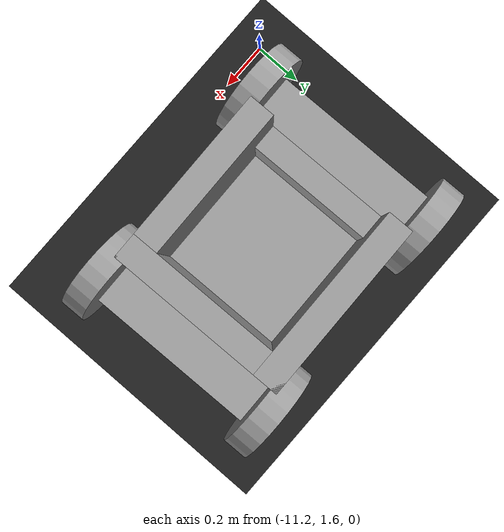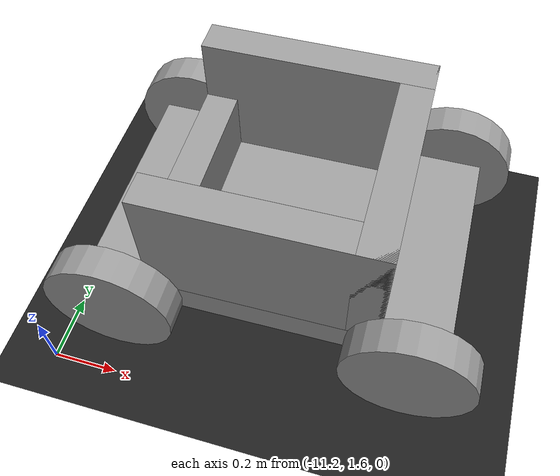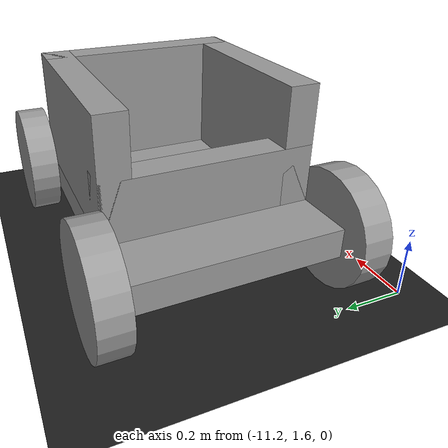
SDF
<sdf version="1.6">
 <world name="default">
  <model name="ground_plane">
   <static>1</static>
   <link name="link">
    <collision name="collision">
     <geometry><plane><normal>0 0 1</normal><size>100 100</size></plane></geometry>
     <surface><friction><ode><mu>100</mu><mu2>50</mu2></ode></friction></surface>
    </collision>
    <visual name="visual">
     <cast_shadows>0</cast_shadows>
     <geometry><plane><normal>0 0 1</normal><size>100 100</size></plane></geometry>
     <material>
      <script><uri>file://media/materials/scripts/gazebo.material</uri><name>Gazebo/FlatBlack</name></script>
     </material>
    </visual>
   </link>
  </model>
  <model name="mymodel_cart.config">
   <link name="link_0">
    <pose>-0 -0 -0.081818 0 -0 0</pose>
    <inertial>
     <mass>1</mass>
     <inertia>
      <ixx>0.166667</ixx>
      <ixy>0</ixy>
      <ixz>0</ixz>
      <iyy>0.166667</iyy>
      <iyz>0</iyz>
      <izz>0.166667</izz>
     </inertia>
    </inertial>
    <visual name="visual">
     <geometry><box><size>0.7 0.7 0.1</size></box></geometry>
     <material>
      <lighting>1</lighting>
      <script><uri>file://media/materials/scripts/gazebo.material</uri><name>Gazebo/Grey</name></script>
      <ambient>0.3 0.3 0.3 1</ambient>
      <diffuse>0.7 0.7 0.7 1</diffuse>
      <specular>0.01 0.01 0.01 1</specular>
      <emissive>0 0 0 1</emissive>
      <shader type="vertex"><normal_map>__default__</normal_map></shader>
     </material>
    </visual>
    <collision name="collision">
     <geometry><box><size>0.7 0.7 0.1</size></box></geometry>
     <surface>
      <friction>
       <ode><mu>1</mu><mu2>1</mu2><fdir1>0 0 0</fdir1><slip1>0</slip1><slip2>0</slip2></ode>
       <torsional>
        <coefficient>1</coefficient>
        <patch_radius>0</patch_radius>
        <surface_radius>0</surface_radius>
        <use_patch_radius>1</use_patch_radius>
        <ode><slip>0</slip></ode>
       </torsional>
      </friction>
      <bounce><restitution_coefficient>0</restitution_coefficient><threshold>1e+06</threshold></bounce>
      <contact>
       <collide_without_contact>0</collide_without_contact>
       <collide_without_contact_bitmask>1</collide_without_contact_bitmask>
       <collide_bitmask>1</collide_bitmask>
       <ode>
        <soft_cfm>0</soft_cfm>
        <soft_erp>0.2</soft_erp>
        <kp>1e+13</kp>
        <kd>1</kd>
        <max_vel>0.01</max_vel>
        <min_depth>0</min_depth>
       </ode>
       <bullet>
        <split_impulse>1</split_impulse>
        <split_impulse_penetration_threshold>-0.01</split_impulse_penetration_threshold>
        <soft_cfm>0</soft_cfm>
        <soft_erp>0.2</soft_erp>
        <kp>1e+13</kp>
        <kd>1</kd>
       </bullet>
      </contact>
     </surface>
    </collision>
   </link>
   <link name="link_0_clone">
    <pose>0.45 0 -0.081818 0 -0 0</pose>
    <inertial>
     <mass>1</mass>
     <inertia>
      <ixx>0.166667</ixx>
      <ixy>0</ixy>
      <ixz>0</ixz>
      <iyy>0.166667</iyy>
      <iyz>0</iyz>
      <izz>0.166667</izz>
     </inertia>
    </inertial>
    <visual name="visual">
     <geometry><box><size>0.2 0.7 0.1</size></box></geometry>
     <material>
      <lighting>1</lighting>
      <script><uri>file://media/materials/scripts/gazebo.material</uri><name>Gazebo/Grey</name></script>
      <ambient>0.3 0.3 0.3 1</ambient>
      <diffuse>0.7 0.7 0.7 1</diffuse>
      <specular>0.01 0.01 0.01 1</specular>
      <emissive>0 0 0 1</emissive>
      <shader type="vertex"><normal_map>__default__</normal_map></shader>
     </material>
    </visual>
    <collision name="collision">
     <geometry><box><size>0.2 0.7 0.1</size></box></geometry>
     <surface>
      <friction>
       <ode><mu>1</mu><mu2>1</mu2><fdir1>0 0 0</fdir1><slip1>0</slip1><slip2>0</slip2></ode>
       <torsional>
        <coefficient>1</coefficient>
        <patch_radius>0</patch_radius>
        <surface_radius>0</surface_radius>
        <use_patch_radius>1</use_patch_radius>
        <ode><slip>0</slip></ode>
       </torsional>
      </friction>
      <bounce><restitution_coefficient>0</restitution_coefficient><threshold>1e+06</threshold></bounce>
      <contact>
       <collide_without_contact>0</collide_without_contact>
       <collide_without_contact_bitmask>1</collide_without_contact_bitmask>
       <collide_bitmask>1</collide_bitmask>
       <ode>
        <soft_cfm>0</soft_cfm>
        <soft_erp>0.2</soft_erp>
        <kp>1e+13</kp>
        <kd>1</kd>
        <max_vel>0.01</max_vel>
        <min_depth>0</min_depth>
       </ode>
       <bullet>
        <split_impulse>1</split_impulse>
        <split_impulse_penetration_threshold>-0.01</split_impulse_penetration_threshold>
        <soft_cfm>0</soft_cfm>
        <soft_erp>0.2</soft_erp>
        <kp>1e+13</kp>
        <kd>1</kd>
       </bullet>
      </contact>
     </surface>
    </collision>
   </link>
   <link name="link_0_clone_clone">
    <pose>-0.45 0 -0.081818 0 -0 0</pose>
    <inertial>
     <mass>1</mass>
     <inertia>
      <ixx>0.166667</ixx>
      <ixy>0</ixy>
      <ixz>0</ixz>
      <iyy>0.166667</iyy>
      <iyz>0</iyz>
      <izz>0.166667</izz>
     </inertia>
    </inertial>
    <visual name="visual">
     <geometry><box><size>0.2 0.7 0.1</size></box></geometry>
     <material>
      <lighting>1</lighting>
      <script><uri>file://media/materials/scripts/gazebo.material</uri><name>Gazebo/Grey</name></script>
      <ambient>0.3 0.3 0.3 1</ambient>
      <diffuse>0.7 0.7 0.7 1</diffuse>
      <specular>0.01 0.01 0.01 1</specular>
      <emissive>0 0 0 1</emissive>
      <shader type="vertex"><normal_map>__default__</normal_map></shader>
     </material>
    </visual>
    <collision name="collision">
     <geometry><box><size>0.2 0.7 0.1</size></box></geometry>
     <surface>
      <friction>
       <ode><mu>1</mu><mu2>1</mu2><fdir1>0 0 0</fdir1><slip1>0</slip1><slip2>0</slip2></ode>
       <torsional>
        <coefficient>1</coefficient>
        <patch_radius>0</patch_radius>
        <surface_radius>0</surface_radius>
        <use_patch_radius>1</use_patch_radius>
        <ode><slip>0</slip></ode>
       </torsional>
      </friction>
      <bounce><restitution_coefficient>0</restitution_coefficient><threshold>1e+06</threshold></bounce>
      <contact>
       <collide_without_contact>0</collide_without_contact>
       <collide_without_contact_bitmask>1</collide_without_contact_bitmask>
       <collide_bitmask>1</collide_bitmask>
       <ode>
        <soft_cfm>0</soft_cfm>
        <soft_erp>0.2</soft_erp>
        <kp>1e+13</kp>
        <kd>1</kd>
        <max_vel>0.01</max_vel>
        <min_depth>0</min_depth>
       </ode>
       <bullet>
        <split_impulse>1</split_impulse>
        <split_impulse_penetration_threshold>-0.01</split_impulse_penetration_threshold>
        <soft_cfm>0</soft_cfm>
        <soft_erp>0.2</soft_erp>
        <kp>1e+13</kp>
        <kd>1</kd>
       </bullet>
      </contact>
     </surface>
    </collision>
   </link>
   <link name="link_1">
    <pose>0.45 -0.400019 -0.081818 1.5707 -0 0</pose>
    <inertial>
     <mass>1</mass>
     <inertia><ixx>0.145833</ixx><ixy>0</ixy><ixz>0</ixz><iyy>0.145833</iyy><iyz>0</iyz><izz>0.125</izz></inertia>
    </inertial>
    <visual name="visual">
     <geometry><cylinder><radius>0.2</radius><length>0.1</length></cylinder></geometry>
     <material>
      <lighting>1</lighting>
      <script><uri>file://media/materials/scripts/gazebo.material</uri><name>Gazebo/Grey</name></script>
      <ambient>0.3 0.3 0.3 1</ambient>
      <diffuse>0.7 0.7 0.7 1</diffuse>
      <specular>0.01 0.01 0.01 1</specular>
      <emissive>0 0 0 1</emissive>
      <shader type="vertex"><normal_map>__default__</normal_map></shader>
     </material>
    </visual>
    <collision name="collision">
     <geometry><cylinder><radius>0.2</radius><length>0.1</length></cylinder></geometry>
     <surface>
      <friction>
       <ode><mu>1</mu><mu2>1</mu2><fdir1>0 0 0</fdir1><slip1>0</slip1><slip2>0</slip2></ode>
       <torsional>
        <coefficient>1</coefficient>
        <patch_radius>0</patch_radius>
        <surface_radius>0</surface_radius>
        <use_patch_radius>1</use_patch_radius>
        <ode><slip>0</slip></ode>
       </torsional>
      </friction>
      <bounce><restitution_coefficient>0</restitution_coefficient><threshold>1e+06</threshold></bounce>
      <contact>
       <collide_without_contact>0</collide_without_contact>
       <collide_without_contact_bitmask>1</collide_without_contact_bitmask>
       <collide_bitmask>1</collide_bitmask>
       <ode>
        <soft_cfm>0</soft_cfm>
        <soft_erp>0.2</soft_erp>
        <kp>1e+13</kp>
        <kd>1</kd>
        <max_vel>0.01</max_vel>
        <min_depth>0</min_depth>
       </ode>
       <bullet>
        <split_impulse>1</split_impulse>
        <split_impulse_penetration_threshold>-0.01</split_impulse_penetration_threshold>
        <soft_cfm>0</soft_cfm>
        <soft_erp>0.2</soft_erp>
        <kp>1e+13</kp>
        <kd>1</kd>
       </bullet>
      </contact>
     </surface>
    </collision>
   </link>
   <link name="link_1_clone">
    <pose>0.45 0.400019 -0.081818 1.5707 -0 0</pose>
    <inertial>
     <mass>1</mass>
     <inertia><ixx>0.145833</ixx><ixy>0</ixy><ixz>0</ixz><iyy>0.145833</iyy><iyz>0</iyz><izz>0.125</izz></inertia>
    </inertial>
    <visual name="visual">
     <geometry><cylinder><radius>0.2</radius><length>0.1</length></cylinder></geometry>
     <material>
      <lighting>1</lighting>
      <script><uri>file://media/materials/scripts/gazebo.material</uri><name>Gazebo/Grey</name></script>
      <ambient>0.3 0.3 0.3 1</ambient>
      <diffuse>0.7 0.7 0.7 1</diffuse>
      <specular>0.01 0.01 0.01 1</specular>
      <emissive>0 0 0 1</emissive>
      <shader type="vertex"><normal_map>__default__</normal_map></shader>
     </material>
    </visual>
    <collision name="collision">
     <geometry><cylinder><radius>0.2</radius><length>0.1</length></cylinder></geometry>
     <surface>
      <friction>
       <ode><mu>1</mu><mu2>1</mu2><fdir1>0 0 0</fdir1><slip1>0</slip1><slip2>0</slip2></ode>
       <torsional>
        <coefficient>1</coefficient>
        <patch_radius>0</patch_radius>
        <surface_radius>0</surface_radius>
        <use_patch_radius>1</use_patch_radius>
        <ode><slip>0</slip></ode>
       </torsional>
      </friction>
      <bounce><restitution_coefficient>0</restitution_coefficient><threshold>1e+06</threshold></bounce>
      <contact>
       <collide_without_contact>0</collide_without_contact>
       <collide_without_contact_bitmask>1</collide_without_contact_bitmask>
       <collide_bitmask>1</collide_bitmask>
       <ode>
        <soft_cfm>0</soft_cfm>
        <soft_erp>0.2</soft_erp>
        <kp>1e+13</kp>
        <kd>1</kd>
        <max_vel>0.01</max_vel>
        <min_depth>0</min_depth>
       </ode>
       <bullet>
        <split_impulse>1</split_impulse>
        <split_impulse_penetration_threshold>-0.01</split_impulse_penetration_threshold>
        <soft_cfm>0</soft_cfm>
        <soft_erp>0.2</soft_erp>
        <kp>1e+13</kp>
        <kd>1</kd>
       </bullet>
      </contact>
     </surface>
    </collision>
   </link>
   <link name="link_1_clone_0">
    <pose>-0.45 -0.400019 -0.081818 1.5707 -0 0</pose>
    <inertial>
     <mass>1</mass>
     <inertia><ixx>0.145833</ixx><ixy>0</ixy><ixz>0</ixz><iyy>0.145833</iyy><iyz>0</iyz><izz>0.125</izz></inertia>
    </inertial>
    <visual name="visual">
     <geometry><cylinder><radius>0.2</radius><length>0.1</length></cylinder></geometry>
     <material>
      <lighting>1</lighting>
      <script><uri>file://media/materials/scripts/gazebo.material</uri><name>Gazebo/Grey</name></script>
      <ambient>0.3 0.3 0.3 1</ambient>
      <diffuse>0.7 0.7 0.7 1</diffuse>
      <specular>0.01 0.01 0.01 1</specular>
      <emissive>0 0 0 1</emissive>
      <shader type="vertex"><normal_map>__default__</normal_map></shader>
     </material>
    </visual>
    <collision name="collision">
     <geometry><cylinder><radius>0.2</radius><length>0.1</length></cylinder></geometry>
     <surface>
      <friction>
       <ode><mu>1</mu><mu2>1</mu2><fdir1>0 0 0</fdir1><slip1>0</slip1><slip2>0</slip2></ode>
       <torsional>
        <coefficient>1</coefficient>
        <patch_radius>0</patch_radius>
        <surface_radius>0</surface_radius>
        <use_patch_radius>1</use_patch_radius>
        <ode><slip>0</slip></ode>
       </torsional>
      </friction>
      <bounce><restitution_coefficient>0</restitution_coefficient><threshold>1e+06</threshold></bounce>
      <contact>
       <collide_without_contact>0</collide_without_contact>
       <collide_without_contact_bitmask>1</collide_without_contact_bitmask>
       <collide_bitmask>1</collide_bitmask>
       <ode>
        <soft_cfm>0</soft_cfm>
        <soft_erp>0.2</soft_erp>
        <kp>1e+13</kp>
        <kd>1</kd>
        <max_vel>0.01</max_vel>
        <min_depth>0</min_depth>
       </ode>
       <bullet>
        <split_impulse>1</split_impulse>
        <split_impulse_penetration_threshold>-0.01</split_impulse_penetration_threshold>
        <soft_cfm>0</soft_cfm>
        <soft_erp>0.2</soft_erp>
        <kp>1e+13</kp>
        <kd>1</kd>
       </bullet>
      </contact>
     </surface>
    </collision>
   </link>
   <link name="link_1_clone_clone">
    <pose>-0.45 0.400019 -0.081818 1.5707 -0 0</pose>
    <inertial>
     <mass>1</mass>
     <inertia><ixx>0.145833</ixx><ixy>0</ixy><ixz>0</ixz><iyy>0.145833</iyy><iyz>0</iyz><izz>0.125</izz></inertia>
    </inertial>
    <visual name="visual">
     <geometry><cylinder><radius>0.2</radius><length>0.1</length></cylinder></geometry>
     <material>
      <lighting>1</lighting>
      <script><uri>file://media/materials/scripts/gazebo.material</uri><name>Gazebo/Grey</name></script>
      <ambient>0.3 0.3 0.3 1</ambient>
      <diffuse>0.7 0.7 0.7 1</diffuse>
      <specular>0.01 0.01 0.01 1</specular>
      <emissive>0 0 0 1</emissive>
      <shader type="vertex"><normal_map>__default__</normal_map></shader>
     </material>
    </visual>
    <collision name="collision">
     <geometry><cylinder><radius>0.2</radius><length>0.1</length></cylinder></geometry>
     <surface>
      <friction>
       <ode><mu>1</mu><mu2>1</mu2><fdir1>0 0 0</fdir1><slip1>0</slip1><slip2>0</slip2></ode>
       <torsional>
        <coefficient>1</coefficient>
        <patch_radius>0</patch_radius>
        <surface_radius>0</surface_radius>
        <use_patch_radius>1</use_patch_radius>
        <ode><slip>0</slip></ode>
       </torsional>
      </friction>
      <bounce><restitution_coefficient>0</restitution_coefficient><threshold>1e+06</threshold></bounce>
      <contact>
       <collide_without_contact>0</collide_without_contact>
       <collide_without_contact_bitmask>1</collide_without_contact_bitmask>
       <collide_bitmask>1</collide_bitmask>
       <ode>
        <soft_cfm>0</soft_cfm>
        <soft_erp>0.2</soft_erp>
        <kp>1e+13</kp>
        <kd>1</kd>
        <max_vel>0.01</max_vel>
        <min_depth>0</min_depth>
       </ode>
       <bullet>
        <split_impulse>1</split_impulse>
        <split_impulse_penetration_threshold>-0.01</split_impulse_penetration_threshold>
        <soft_cfm>0</soft_cfm>
        <soft_erp>0.2</soft_erp>
        <kp>1e+13</kp>
        <kd>1</kd>
       </bullet>
      </contact>
     </surface>
    </collision>
   </link>
   <link name="link_3">
    <pose>-0.3 -0 0.068182 0 -0 0</pose>
    <inertial>
     <mass>1</mass>
     <inertia>
      <ixx>0.166667</ixx>
      <ixy>0</ixy>
      <ixz>0</ixz>
      <iyy>0.166667</iyy>
      <iyz>0</iyz>
      <izz>0.166667</izz>
     </inertia>
    </inertial>
    <visual name="visual">
     <geometry><box><size>0.1 0.7 0.2</size></box></geometry>
     <material>
      <lighting>1</lighting>
      <script><uri>file://media/materials/scripts/gazebo.material</uri><name>Gazebo/Grey</name></script>
      <ambient>0.3 0.3 0.3 1</ambient>
      <diffuse>0.7 0.7 0.7 1</diffuse>
      <specular>0.01 0.01 0.01 1</specular>
      <emissive>0 0 0 1</emissive>
      <shader type="vertex"><normal_map>__default__</normal_map></shader>
     </material>
    </visual>
    <collision name="collision">
     <geometry><box><size>0.1 0.7 0.2</size></box></geometry>
     <surface>
      <friction>
       <ode><mu>1</mu><mu2>1</mu2><fdir1>0 0 0</fdir1><slip1>0</slip1><slip2>0</slip2></ode>
       <torsional>
        <coefficient>1</coefficient>
        <patch_radius>0</patch_radius>
        <surface_radius>0</surface_radius>
        <use_patch_radius>1</use_patch_radius>
        <ode><slip>0</slip></ode>
       </torsional>
      </friction>
      <bounce><restitution_coefficient>0</restitution_coefficient><threshold>1e+06</threshold></bounce>
      <contact>
       <collide_without_contact>0</collide_without_contact>
       <collide_without_contact_bitmask>1</collide_without_contact_bitmask>
       <collide_bitmask>1</collide_bitmask>
       <ode>
        <soft_cfm>0</soft_cfm>
        <soft_erp>0.2</soft_erp>
        <kp>1e+13</kp>
        <kd>1</kd>
        <max_vel>0.01</max_vel>
        <min_depth>0</min_depth>
       </ode>
       <bullet>
        <split_impulse>1</split_impulse>
        <split_impulse_penetration_threshold>-0.01</split_impulse_penetration_threshold>
        <soft_cfm>0</soft_cfm>
        <soft_erp>0.2</soft_erp>
        <kp>1e+13</kp>
        <kd>1</kd>
       </bullet>
      </contact>
     </surface>
    </collision>
   </link>
   <link name="link_3_clone">
    <pose>-0 -0.3 0.168182 0 -0 0</pose>
    <inertial>
     <mass>1</mass>
     <inertia>
      <ixx>0.166667</ixx>
      <ixy>0</ixy>
      <ixz>0</ixz>
      <iyy>0.166667</iyy>
      <iyz>0</iyz>
      <izz>0.166667</izz>
     </inertia>
    </inertial>
    <visual name="visual">
     <geometry><box><size>0.7 0.1 0.4</size></box></geometry>
     <material>
      <lighting>1</lighting>
      <script><uri>file://media/materials/scripts/gazebo.material</uri><name>Gazebo/Grey</name></script>
      <ambient>0.3 0.3 0.3 1</ambient>
      <diffuse>0.7 0.7 0.7 1</diffuse>
      <specular>0.01 0.01 0.01 1</specular>
      <emissive>0 0 0 1</emissive>
      <shader type="vertex"><normal_map>__default__</normal_map></shader>
     </material>
    </visual>
    <collision name="collision">
     <geometry><box><size>0.7 0.1 0.4</size></box></geometry>
     <surface>
      <friction>
       <ode><mu>1</mu><mu2>1</mu2><fdir1>0 0 0</fdir1><slip1>0</slip1><slip2>0</slip2></ode>
       <torsional>
        <coefficient>1</coefficient>
        <patch_radius>0</patch_radius>
        <surface_radius>0</surface_radius>
        <use_patch_radius>1</use_patch_radius>
        <ode><slip>0</slip></ode>
       </torsional>
      </friction>
      <bounce><restitution_coefficient>0</restitution_coefficient><threshold>1e+06</threshold></bounce>
      <contact>
       <collide_without_contact>0</collide_without_contact>
       <collide_without_contact_bitmask>1</collide_without_contact_bitmask>
       <collide_bitmask>1</collide_bitmask>
       <ode>
        <soft_cfm>0</soft_cfm>
        <soft_erp>0.2</soft_erp>
        <kp>1e+13</kp>
        <kd>1</kd>
        <max_vel>0.01</max_vel>
        <min_depth>0</min_depth>
       </ode>
       <bullet>
        <split_impulse>1</split_impulse>
        <split_impulse_penetration_threshold>-0.01</split_impulse_penetration_threshold>
        <soft_cfm>0</soft_cfm>
        <soft_erp>0.2</soft_erp>
        <kp>1e+13</kp>
        <kd>1</kd>
       </bullet>
      </contact>
     </surface>
    </collision>
   </link>
   <link name="link_3_clone_0">
    <pose>0.3 -0 0.168182 0 -0 0</pose>
    <inertial>
     <mass>1</mass>
     <inertia>
      <ixx>0.166667</ixx>
      <ixy>0</ixy>
      <ixz>0</ixz>
      <iyy>0.166667</iyy>
      <iyz>0</iyz>
      <izz>0.166667</izz>
     </inertia>
    </inertial>
    <visual name="visual">
     <geometry><box><size>0.1 0.7 0.4</size></box></geometry>
     <material>
      <lighting>1</lighting>
      <script><uri>file://media/materials/scripts/gazebo.material</uri><name>Gazebo/Grey</name></script>
      <ambient>0.3 0.3 0.3 1</ambient>
      <diffuse>0.7 0.7 0.7 1</diffuse>
      <specular>0.01 0.01 0.01 1</specular>
      <emissive>0 0 0 1</emissive>
      <shader type="vertex"><normal_map>__default__</normal_map></shader>
     </material>
    </visual>
    <collision name="collision">
     <geometry><box><size>0.1 0.7 0.4</size></box></geometry>
     <surface>
      <friction>
       <ode><mu>1</mu><mu2>1</mu2><fdir1>0 0 0</fdir1><slip1>0</slip1><slip2>0</slip2></ode>
       <torsional>
        <coefficient>1</coefficient>
        <patch_radius>0</patch_radius>
        <surface_radius>0</surface_radius>
        <use_patch_radius>1</use_patch_radius>
        <ode><slip>0</slip></ode>
       </torsional>
      </friction>
      <bounce><restitution_coefficient>0</restitution_coefficient><threshold>1e+06</threshold></bounce>
      <contact>
       <collide_without_contact>0</collide_without_contact>
       <collide_without_contact_bitmask>1</collide_without_contact_bitmask>
       <collide_bitmask>1</collide_bitmask>
       <ode>
        <soft_cfm>0</soft_cfm>
        <soft_erp>0.2</soft_erp>
        <kp>1e+13</kp>
        <kd>1</kd>
        <max_vel>0.01</max_vel>
        <min_depth>0</min_depth>
       </ode>
       <bullet>
        <split_impulse>1</split_impulse>
        <split_impulse_penetration_threshold>-0.01</split_impulse_penetration_threshold>
        <soft_cfm>0</soft_cfm>
        <soft_erp>0.2</soft_erp>
        <kp>1e+13</kp>
        <kd>1</kd>
       </bullet>
      </contact>
     </surface>
    </collision>
   </link>
   <link name="link_3_clone_clone_0">
    <pose>-0 0.3 0.168182 0 -0 0</pose>
    <inertial>
     <mass>1</mass>
     <inertia>
      <ixx>0.166667</ixx>
      <ixy>0</ixy>
      <ixz>0</ixz>
      <iyy>0.166667</iyy>
      <iyz>0</iyz>
      <izz>0.166667</izz>
     </inertia>
    </inertial>
    <visual name="visual">
     <geometry><box><size>0.7 0.1 0.4</size></box></geometry>
     <material>
      <lighting>1</lighting>
      <script><uri>file://media/materials/scripts/gazebo.material</uri><name>Gazebo/Grey</name></script>
      <ambient>0.3 0.3 0.3 1</ambient>
      <diffuse>0.7 0.7 0.7 1</diffuse>
      <specular>0.01 0.01 0.01 1</specular>
      <emissive>0 0 0 1</emissive>
      <shader type="vertex"><normal_map>__default__</normal_map></shader>
     </material>
    </visual>
    <collision name="collision">
     <geometry><box><size>0.7 0.1 0.4</size></box></geometry>
     <surface>
      <friction>
       <ode><mu>1</mu><mu2>1</mu2><fdir1>0 0 0</fdir1><slip1>0</slip1><slip2>0</slip2></ode>
       <torsional>
        <coefficient>1</coefficient>
        <patch_radius>0</patch_radius>
        <surface_radius>0</surface_radius>
        <use_patch_radius>1</use_patch_radius>
        <ode><slip>0</slip></ode>
       </torsional>
      </friction>
      <bounce><restitution_coefficient>0</restitution_coefficient><threshold>1e+06</threshold></bounce>
      <contact>
       <collide_without_contact>0</collide_without_contact>
       <collide_without_contact_bitmask>1</collide_without_contact_bitmask>
       <collide_bitmask>1</collide_bitmask>
       <ode>
        <soft_cfm>0</soft_cfm>
        <soft_erp>0.2</soft_erp>
        <kp>1e+13</kp>
        <kd>1</kd>
        <max_vel>0.01</max_vel>
        <min_depth>0</min_depth>
       </ode>
       <bullet>
        <split_impulse>1</split_impulse>
        <split_impulse_penetration_threshold>-0.01</split_impulse_penetration_threshold>
        <soft_cfm>0</soft_cfm>
        <soft_erp>0.2</soft_erp>
        <kp>1e+13</kp>
        <kd>1</kd>
       </bullet>
      </contact>
     </surface>
    </collision>
   </link>
   <joint name="link_0_JOINT_0" type="fixed">
    <parent>link_0</parent>
    <child>link_0_clone</child>
    <physics>
     <ode><limit><cfm>0</cfm><erp>0.2</erp></limit><suspension><cfm>0</cfm><erp>0.2</erp></suspension></ode>
    </physics>
   </joint>
   <joint name="link_0_JOINT_12" type="fixed">
    <parent>link_0</parent>
    <child>link_3</child>
    <physics>
     <ode><limit><cfm>0</cfm><erp>0.2</erp></limit><suspension><cfm>0</cfm><erp>0.2</erp></suspension></ode>
    </physics>
   </joint>
   <joint name="link_0_JOINT_1" type="fixed">
    <parent>link_0</parent>
    <child>link_0_clone_clone</child>
    <physics>
     <ode><limit><cfm>0</cfm><erp>0.2</erp></limit><suspension><cfm>0</cfm><erp>0.2</erp></suspension></ode>
    </physics>
   </joint>
   <joint name="link_0_JOINT_7" type="fixed">
    <parent>link_0</parent>
    <child>link_3_clone_clone_0</child>
    <physics>
     <ode><limit><cfm>0</cfm><erp>0.2</erp></limit><suspension><cfm>0</cfm><erp>0.2</erp></suspension></ode>
    </physics>
   </joint>
   <joint name="link_0_JOINT_8" type="fixed">
    <parent>link_0</parent>
    <child>link_3_clone</child>
    <physics>
     <ode><limit><cfm>0</cfm><erp>0.2</erp></limit><suspension><cfm>0</cfm><erp>0.2</erp></suspension></ode>
    </physics>
   </joint>
   <joint name="link_0_JOINT_9" type="fixed">
    <parent>link_0</parent>
    <child>link_3_clone_0</child>
    <physics>
     <ode><limit><cfm>0</cfm><erp>0.2</erp></limit><suspension><cfm>0</cfm><erp>0.2</erp></suspension></ode>
    </physics>
   </joint>
   <joint name="link_0_clone_JOINT_2" type="revolute">
    <parent>link_0_clone</parent>
    <child>link_1</child>
    <axis>
     <xyz>0 0 1</xyz>
     <use_parent_model_frame>0</use_parent_model_frame>
     <limit>
      <lower>-1.79769e+308</lower>
      <upper>1.79769e+308</upper>
      <effort>-1</effort>
      <velocity>-1</velocity>
     </limit>
     <dynamics>
      <spring_reference>0</spring_reference>
      <spring_stiffness>0</spring_stiffness>
      <damping>0</damping>
      <friction>0</friction>
     </dynamics>
    </axis>
    <physics>
     <ode><limit><cfm>0</cfm><erp>0.2</erp></limit><suspension><cfm>0</cfm><erp>0.2</erp></suspension></ode>
    </physics>
   </joint>
   <joint name="link_0_clone_JOINT_3" type="revolute">
    <parent>link_0_clone</parent>
    <child>link_1_clone</child>
    <axis>
     <xyz>1 0 0</xyz>
     <use_parent_model_frame>0</use_parent_model_frame>
     <limit>
      <lower>-1.79769e+308</lower>
      <upper>1.79769e+308</upper>
      <effort>-1</effort>
      <velocity>-1</velocity>
     </limit>
     <dynamics>
      <spring_reference>0</spring_reference>
      <spring_stiffness>0</spring_stiffness>
      <damping>0</damping>
      <friction>0</friction>
     </dynamics>
    </axis>
    <physics>
     <ode><limit><cfm>0</cfm><erp>0.2</erp></limit><suspension><cfm>0</cfm><erp>0.2</erp></suspension></ode>
    </physics>
   </joint>
   <joint name="link_0_clone_clone_JOINT_5" type="revolute">
    <parent>link_0_clone_clone</parent>
    <child>link_1_clone_0</child>
    <axis>
     <xyz>0 0 1</xyz>
     <use_parent_model_frame>0</use_parent_model_frame>
     <limit>
      <lower>-1.79769e+308</lower>
      <upper>1.79769e+308</upper>
      <effort>-1</effort>
      <velocity>-1</velocity>
     </limit>
     <dynamics>
      <spring_reference>0</spring_reference>
      <spring_stiffness>0</spring_stiffness>
      <damping>0</damping>
      <friction>0</friction>
     </dynamics>
    </axis>
    <physics>
     <ode><limit><cfm>0</cfm><erp>0.2</erp></limit><suspension><cfm>0</cfm><erp>0.2</erp></suspension></ode>
    </physics>
   </joint>
   <joint name="link_0_clone_clone_JOINT_6" type="revolute">
    <parent>link_0_clone_clone</parent>
    <child>link_1_clone_clone</child>
    <axis>
     <xyz>0 0 1</xyz>
     <use_parent_model_frame>0</use_parent_model_frame>
     <limit>
      <lower>-1.79769e+308</lower>
      <upper>1.79769e+308</upper>
      <effort>-1</effort>
      <velocity>-1</velocity>
     </limit>
     <dynamics>
      <spring_reference>0</spring_reference>
      <spring_stiffness>0</spring_stiffness>
      <damping>0</damping>
      <friction>0</friction>
     </dynamics>
    </axis>
    <physics>
     <ode><limit><cfm>0</cfm><erp>0.2</erp></limit><suspension><cfm>0</cfm><erp>0.2</erp></suspension></ode>
    </physics>
   </joint>
   <static>0</static>
   <pose>-10.5826 2.15646 0.281817 -4e-06 3e-06 0.014328</pose>
  </model>
 </world>
</sdf>
